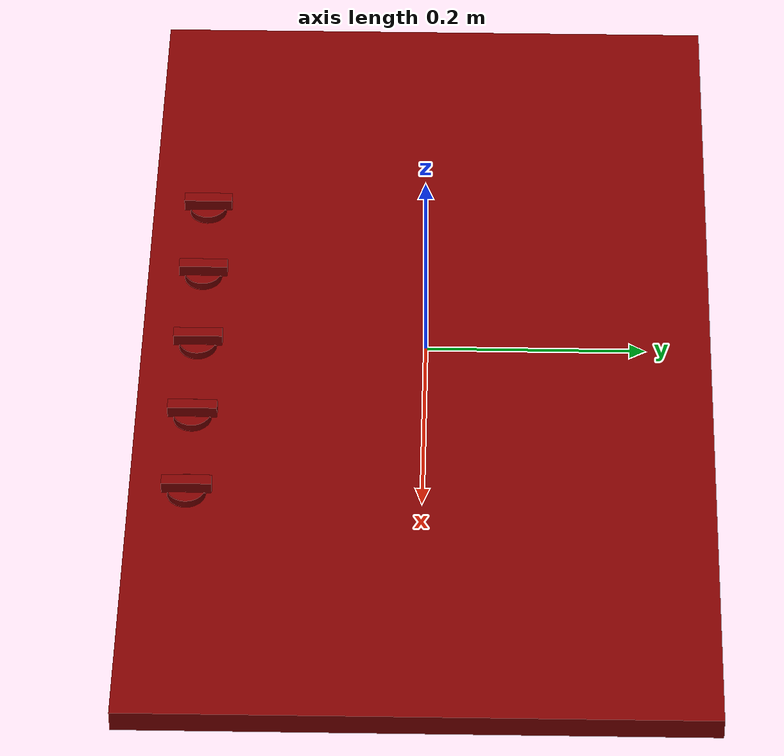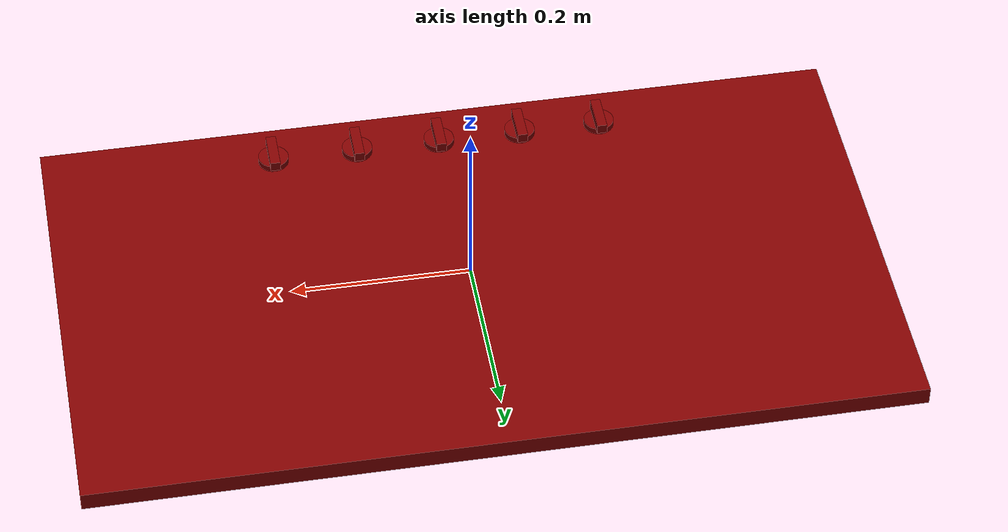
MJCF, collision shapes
<?xml version='1.0' encoding='UTF-8'?>
<mujoco model="model">
  <compiler angle="radian"/>
  <asset>
    <mesh file="visuals/knob_center.obj" name="knob_center_vis"/>
    <mesh file="visuals/knob_front_left.obj" name="knob_front_left_vis"/>
    <mesh file="visuals/knob_front_right.obj" name="knob_front_right_vis"/>
    <mesh file="visuals/knob_rear_left.obj" name="knob_rear_left_vis"/>
    <mesh file="visuals/knob_rear_right.obj" name="knob_rear_right_vis"/>
    <mesh file="visuals/Body001.obj" name="Body001_vis"/>
    <texture file="visuals/T_BC001.png" name="Body001_material" type="2d"/>
    <material name="Body001_material" rgba="1 1 1 1.0" texture="Body001_material" shininess="5" specular="5"/>
    <texture file="visuals/T_BC001.png" name="knob_center_material" type="2d"/>
    <material name="knob_center_material" rgba="1 1 1 1.0" texture="knob_center_material" shininess="5" specular="5"/>
    <texture file="visuals/T_BC001.png" name="knob_front_left_material" type="2d"/>
    <material name="knob_front_left_material" rgba="1 1 1 1.0" texture="knob_front_left_material" shininess="5" specular="5"/>
    <texture file="visuals/T_BC001.png" name="knob_front_right_material" type="2d"/>
    <material name="knob_front_right_material" rgba="1 1 1 1.0" texture="knob_front_right_material" shininess="5" specular="5"/>
    <texture file="visuals/T_BC001.png" name="knob_rear_left_material" type="2d"/>
    <material name="knob_rear_left_material" rgba="1 1 1 1.0" texture="knob_rear_left_material" shininess="5" specular="5"/>
    <texture file="visuals/T_BC001.png" name="knob_rear_right_material" type="2d"/>
    <material name="knob_rear_right_material" rgba="1 1 1 1.0" texture="knob_rear_right_material" shininess="5" specular="5"/>
  </asset>
  <default>
    <default class="visual">
      <geom conaffinity="0" contype="0" group="1" type="mesh"/>
    </default>
    <default class="collision">
      <geom group="0" rgba="0.5 0 0 0.5"/>
    </default>
    <default class="spawn">
      <geom group="0" rgba="1 1 1 0.5" contype="0" conaffinity="0"/>
      <site group="0" rgba="1 1 1 0.5"/>
    </default>
    <default class="region">
      <geom group="1" conaffinity="0" contype="0" rgba="0 1 0 0"/>
    </default>
  </default>
  <worldbody>
    <body>
      <body name="object">
        <site type="cylinder" rgba="0.5 0 0 0.5" size="0.09663259238004684 4.999999873689376e-05" pos="0.003427347633987665 0.024044157937169075 0.0004392651899252087" name="burner_on_center"/>
        <site type="cylinder" rgba="0.5 0 0 0.5" size="0.08514081686735153 4.999999873689376e-05" pos="-0.28297820687294006 0.12165854126214981 0.0004392651899252087" name="burner_on_rear_left"/>
        <site type="cylinder" rgba="0.5 0 0 0.5" size="0.08514083176851273 4.999999873689376e-05" pos="0.2781682014465332 0.12165854126214981 0.0004392651899252087" name="burner_on_rear_right"/>
        <site type="cylinder" rgba="0.5 0 0 0.5" size="0.0746128186583519 4.999999873689376e-05" pos="0.2823864817619324 -0.069872185587883 0.0004392726405058056" name="burner_on_front_right"/>
        <site type="cylinder" rgba="0.5 0 0 0.5" size="0.0746128112077713 4.999999873689376e-05" pos="-0.2876795530319214 -0.069872185587883 0.0004392726405058056" name="burner_on_front_left"/>
        <geom mesh="Body001_vis" type="mesh" solimp="0.998 0.998 0.001" solref="0.001 1" density="100" friction="0.95 0.3 0.1" class="visual" material="Body001_material"/>
        <geom class="collision" type="box" pos="-0.0002840069937519729 -4.4800159230362624e-05 -0.009330048225820065" size="0.4562555253505707 0.2605164349079132 0.010598084889352322" quat="1.0 0.0 0.0 0.0"/>
        <body name="knob_center">
          <joint axis="0.0 0.0 1.0" pos="0.0018313440959900618 -0.20912569761276245 0.009779957123100758" limited="true" name="knob_center_joint" range="0.0 3.5779249665883754" type="hinge" damping="0.05" armature="0.001" springref="-0.01"/>
          <geom mesh="knob_center_vis" type="mesh" solimp="0.998 0.998 0.001" solref="0.001 1" density="100" friction="0.95 0.3 0.1" class="visual" material="knob_center_material"/>
          <geom class="collision" type="box" pos="0.001687976997345686 -0.20864903926849365 0.014286531135439873" size="0.005707502830773592 0.022309953346848488 0.005733952857553959" quat="1.0 0.0 0.0 0.0"/>
          <geom class="collision" type="cylinder" pos="0.0016382745234295726 -0.20906837284564972 0.005588534288108349" size="0.01724424958229065 0.0038178665563464165" quat="1.0 0.0 0.0 0.0"/>
        </body>
        <body name="knob_front_left">
          <joint axis="0.0 0.0 1.0" pos="-0.18545380234718323 -0.20912569761276245 0.009779957123100758" limited="true" name="knob_front_left_joint" range="0.0 3.5779249665883754" type="hinge" damping="0.05" armature="0.001" springref="-0.01"/>
          <geom mesh="knob_front_left_vis" type="mesh" solimp="0.998 0.998 0.001" solref="0.001 1" density="100" friction="0.95 0.3 0.1" class="visual" material="knob_front_left_material"/>
          <geom class="collision" type="cylinder" pos="-0.18538932502269745 -0.20906837284564972 0.005588534288108349" size="0.01724424958229065 0.0038178665563464165" quat="1.0 0.0 0.0 0.0"/>
          <geom class="collision" type="box" pos="-0.18508179485797882 -0.20864903926849365 0.014286531135439873" size="0.005707502830773592 0.022309953346848488 0.005733952857553959" quat="1.0 0.0 0.0 0.0"/>
        </body>
        <body name="knob_front_right">
          <joint axis="0.0 0.0 1.0" pos="0.19316482543945312 -0.20912569761276245 0.009779957123100758" limited="true" name="knob_front_right_joint" range="0.0 3.5779249665883754" type="hinge" damping="0.05" armature="0.001" springref="-0.01"/>
          <geom mesh="knob_front_right_vis" type="mesh" solimp="0.998 0.998 0.001" solref="0.001 1" density="100" friction="0.95 0.3 0.1" class="visual" material="knob_front_right_material"/>
          <geom class="collision" type="box" pos="0.19307716190814972 -0.20864903926849365 0.014286531135439873" size="0.005707502830773592 0.022309953346848488 0.005733952857553959" quat="1.0 0.0 0.0 0.0"/>
          <geom class="collision" type="cylinder" pos="0.19302745163440704 -0.20906837284564972 0.005588534288108349" size="0.01724424958229065 0.0038178665563464165" quat="1.0 0.0 0.0 0.0"/>
        </body>
        <body name="knob_rear_left">
          <joint axis="0.0 0.0 1.0" pos="-0.09244690090417862 -0.20912569761276245 0.009779957123100758" limited="true" name="knob_rear_left_joint" range="0.0 3.5779249665883754" type="hinge" damping="0.05" armature="0.001" springref="-0.01"/>
          <geom mesh="knob_rear_left_vis" type="mesh" solimp="0.998 0.998 0.001" solref="0.001 1" density="100" friction="0.95 0.3 0.1" class="visual" material="knob_rear_left_material"/>
          <geom class="collision" type="box" pos="-0.09249898046255112 -0.20864903926849365 0.014286531135439873" size="0.005707502830773592 0.022309953346848488 0.005733952857553959" quat="1.0 0.0 0.0 0.0"/>
          <geom class="collision" type="cylinder" pos="-0.0925486832857132 -0.20906837284564972 0.005588534288108349" size="0.01724424958229065 0.0038178665563464165" quat="1.0 0.0 0.0 0.0"/>
        </body>
        <body name="knob_rear_right">
          <joint axis="0.0 0.0 1.0" pos="0.09649623930454254 -0.20912571251392365 0.009779957123100758" limited="true" name="knob_rear_right_joint" range="0.0 3.5779249665883754" type="hinge" damping="0.05" armature="0.001" springref="-0.01"/>
          <geom mesh="knob_rear_right_vis" type="mesh" solimp="0.998 0.998 0.001" solref="0.001 1" density="100" friction="0.95 0.3 0.1" class="visual" material="knob_rear_right_material"/>
          <geom class="collision" type="box" pos="0.09650463610887527 -0.20864903926849365 0.014286531135439873" size="0.005707502830773592 0.022309953346848488 0.005733952857553959" quat="1.0 0.0 0.0 0.0"/>
          <geom class="collision" type="cylinder" pos="0.0964549258351326 -0.20906837284564972 0.005588534288108349" size="0.01724424958229065 0.0038178665563464165" quat="1.0 0.0 0.0 0.0"/>
        </body>
        <geom class="region" name="reg_main" type="box" pos="0.0 0.0 -0.009615450166165829" size="0.45500004291534424 0.25999999046325684 0.009999998845160007"/>
      </body>
    </body>
  </worldbody>
  <actuator>
    <motor name="knob_center_joint_actuator" joint="knob_center_joint" gear="10"/>
    <motor name="knob_front_left_joint_actuator" joint="knob_front_left_joint" gear="10"/>
    <motor name="knob_front_right_joint_actuator" joint="knob_front_right_joint" gear="10"/>
    <motor name="knob_rear_left_joint_actuator" joint="knob_rear_left_joint" gear="10"/>
    <motor name="knob_rear_right_joint_actuator" joint="knob_rear_right_joint" gear="10"/>
  </actuator>
</mujoco>
